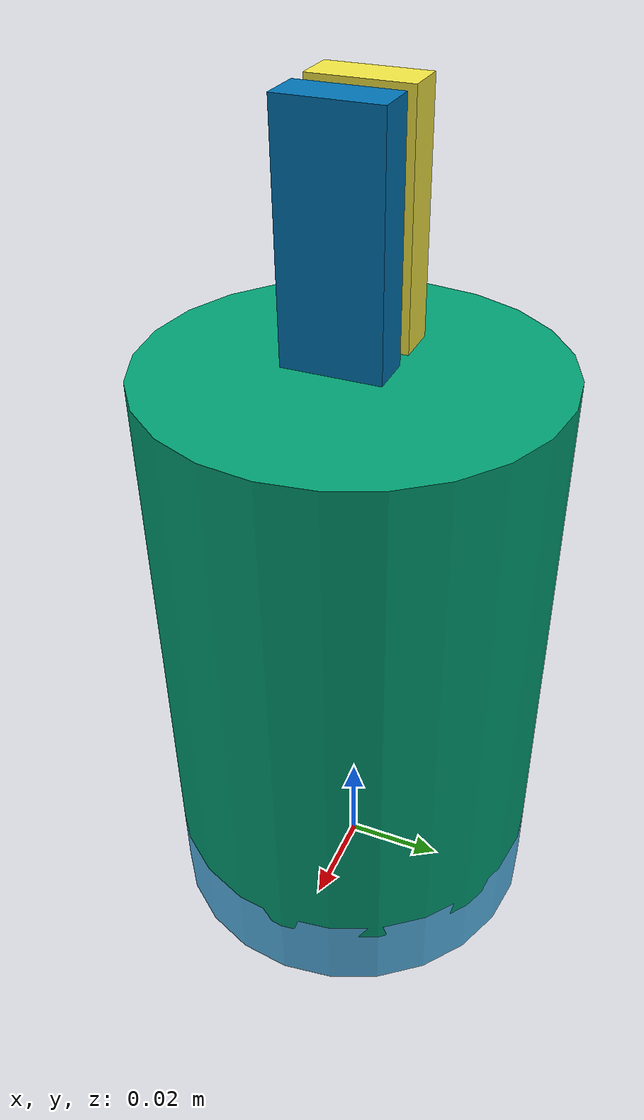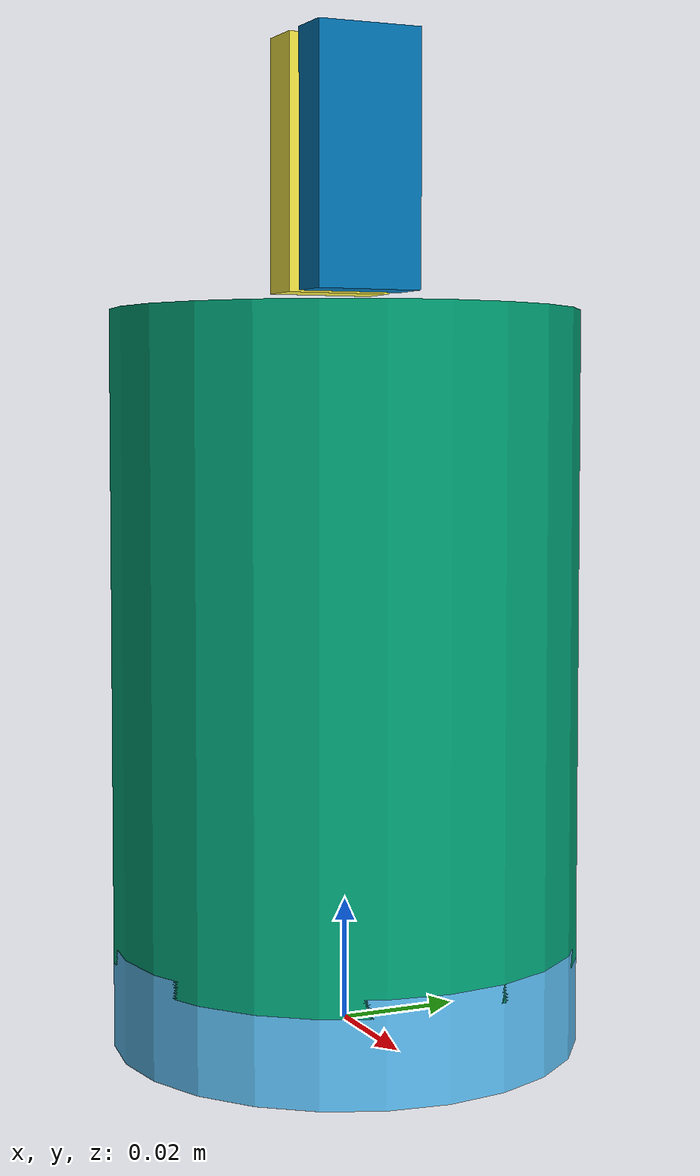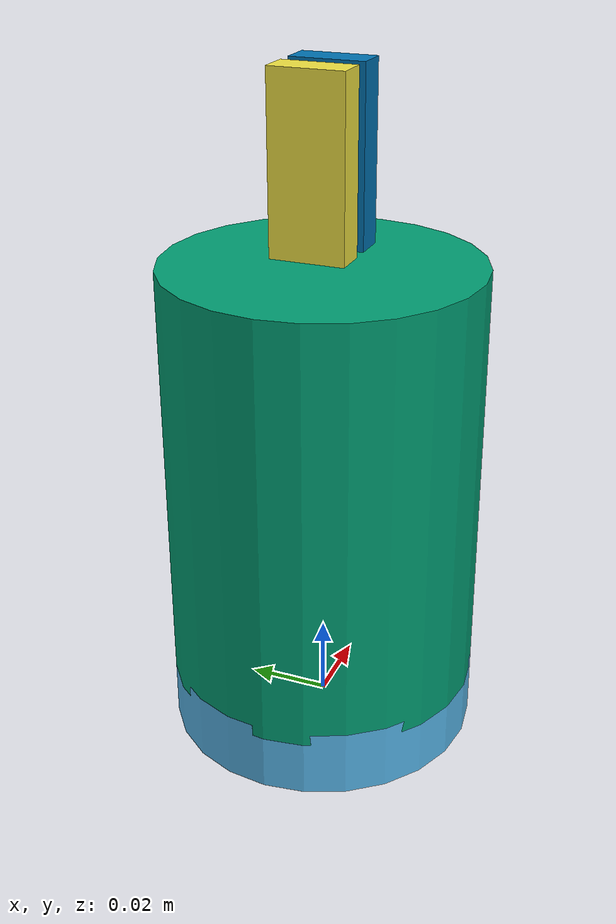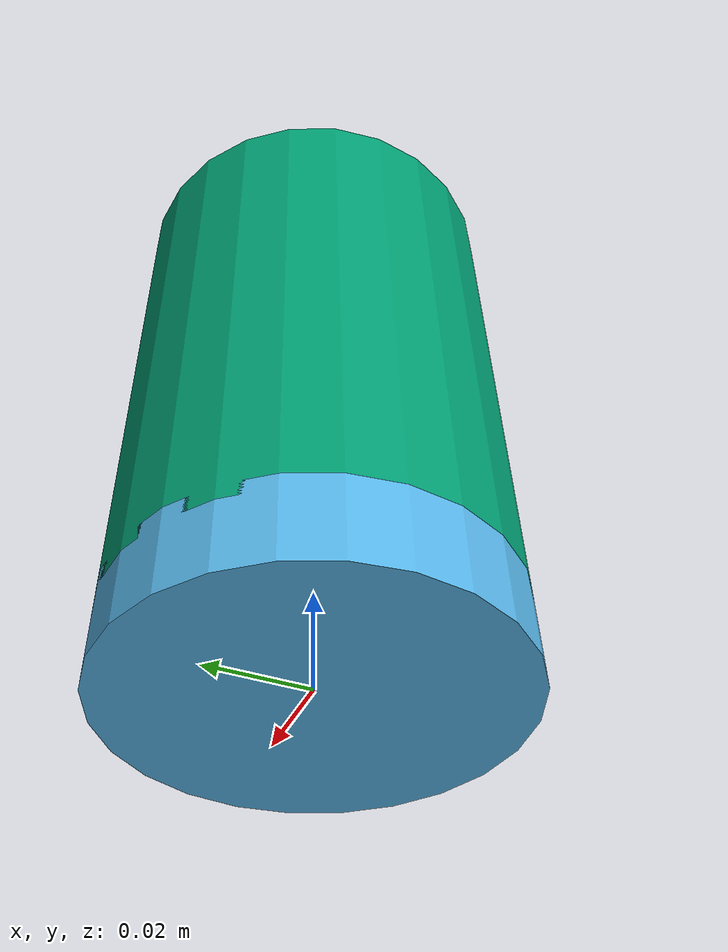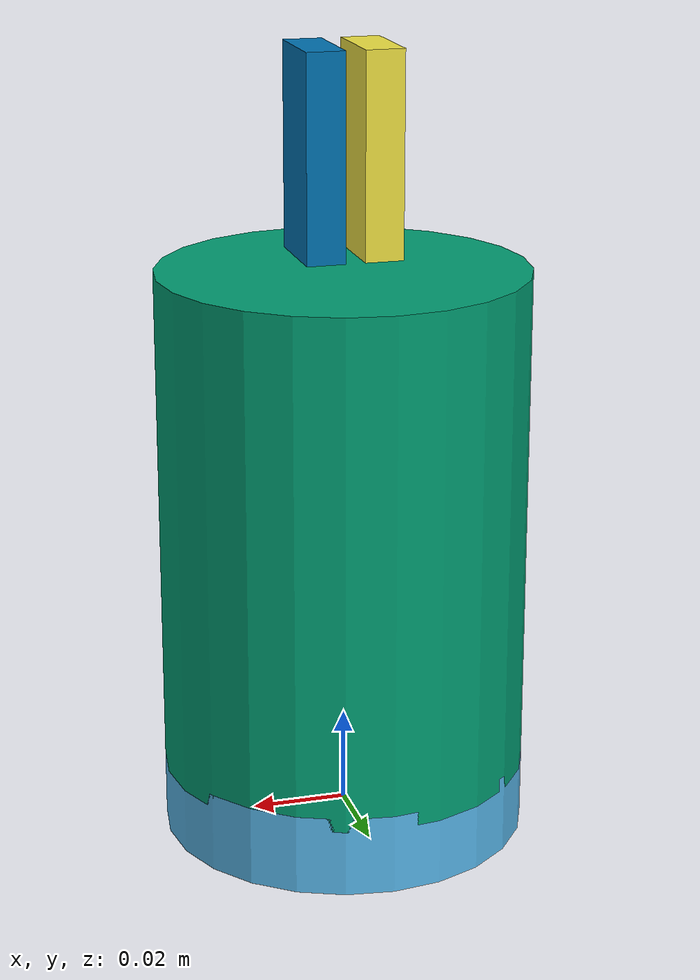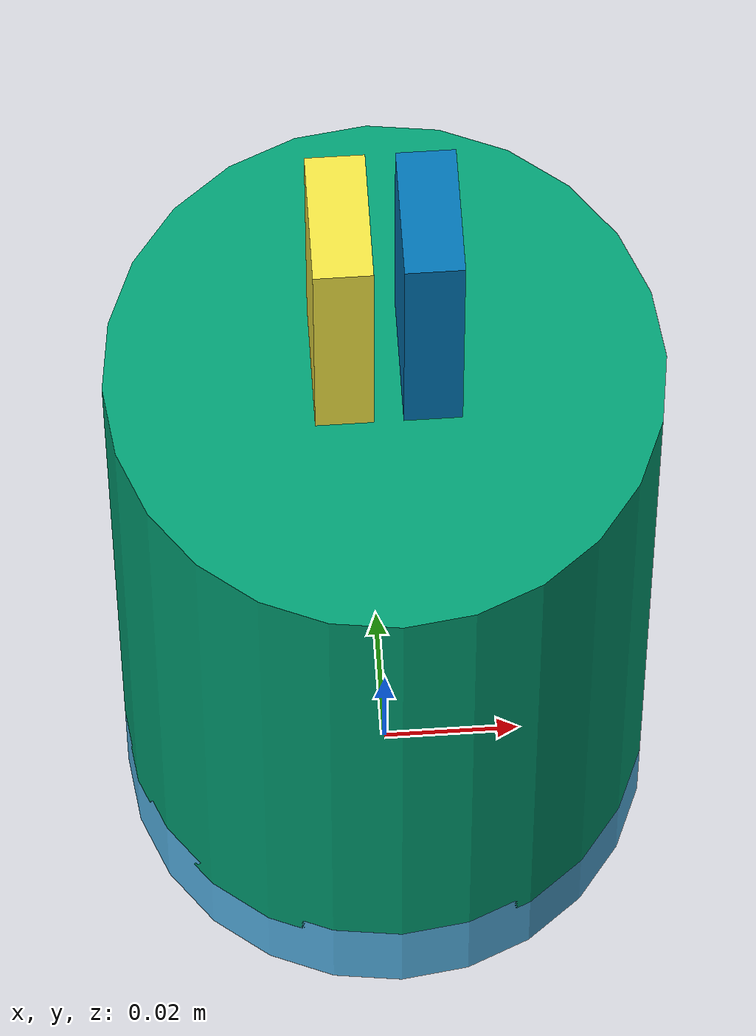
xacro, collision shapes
<?xml version="1.0"?>
<robot xmlns:xacro="http://ros.org/wiki/xacro" name="robotiq_hande_gripper">
  <xacro:arg name="parent" default="tool0"/>
  <xacro:arg name="grip_pos_min" default="0"/>
  <xacro:arg name="grip_pos_max" default="0.025"/>
  <xacro:arg name="tty_port" default="/tmp/ttyUR"/>
  <xacro:arg name="baudrate" default="115200"/>
  <xacro:arg name="parity" default="N"/>
  <xacro:arg name="data_bits" default="8"/>
  <xacro:arg name="stop_bit" default="1"/>
  <xacro:arg name="slave_id" default="9"/>
  <xacro:arg name="frequency_hz" default="10"/>

  <xacro:arg name="create_socat_tty" default="false"/>
  <xacro:arg name="socat_ip_address" default="127.0.0.1"/>
  <xacro:arg name="socat_port" default="54321"/>

  <xacro:arg name="use_fake_hardware" default="true"/>

  <xacro:include filename="$(find robotiq_hande_description)/urdf/robotiq_hande_gripper.xacro"/>

  <link name="$(arg parent)"/>
  <xacro:robotiq_hande_gripper
    name="robotiq_hande_gripper"
    prefix=""
    parent="$(arg parent)"
    grip_pos_min="$(arg grip_pos_min)"
    grip_pos_max="$(arg grip_pos_max)"
    tty_port="$(arg tty_port)"
    baudrate="$(arg baudrate)"
    parity="$(arg parity)"
    data_bits="$(arg data_bits)"
    stop_bit="$(arg stop_bit)"
    slave_id="$(arg slave_id)"
    frequency_hz="$(arg frequency_hz)"
    create_socat_tty="$(arg create_socat_tty)"
    socat_ip_address="$(arg socat_ip_address)"
    socat_port="$(arg socat_port)"
    use_fake_hardware="$(arg use_fake_hardware)"
  />
</robot>

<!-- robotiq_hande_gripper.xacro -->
<robot xmlns:xacro="http://ros.org/wiki/xacro">
  <!--
    Original URDF file by Cristian C Beltran-Hernandez
  -->

  <xacro:include filename="$(find robotiq_hande_description)/urdf/robotiq_hande_gripper.ros2_control.xacro"/>
  <xacro:include filename="$(find robotiq_hande_description)/urdf/cylinder_inertial.xacro"/>

  <xacro:macro
    name="robotiq_hande_gripper"
    params="name
            prefix
            parent
            grip_pos_min
            grip_pos_max
            tty_port
            baudrate
            parity
            data_bits
            stop_bit
            slave_id
            use_fake_hardware
            sim_gazebo:=false
            sim_ignition:=false
            frequency_hz:=10
            create_socat_tty:=false
            socat_ip_address:=127.0.0.1
            socat_port:=54321
            coupler_mass:=0.119
            generate_ros2_control_tag:=true
            xyz:='0 0 0'
            rpy:='0 0 0'"
  >
    <!-- ros2_control parameters  -->
    <xacro:if value="${generate_ros2_control_tag}">
      <xacro:robotiq_hande_ros2_control
        name="${name}"
        prefix="${prefix}"
        grip_pos_min="${grip_pos_min}"
        grip_pos_max="${grip_pos_max}"
        tty_port="${tty_port}"
        baudrate="${baudrate}"
        parity="${parity}"
        data_bits="${data_bits}"
        stop_bit="${stop_bit}"
        slave_id="${slave_id}"
        frequency_hz="${frequency_hz}"
        create_socat_tty="${create_socat_tty}"
        socat_ip_address="${socat_ip_address}"
        socat_port="${socat_port}"
        use_fake_hardware="${use_fake_hardware}"
        sim_gazebo="${sim_gazebo}"
        sim_ignition="${sim_ignition}"
      />
    </xacro:if>

    <!-- Robotiq Hand-E specs -->
    <!--  + Height added by the IO coupler: 11.0mm -->
    <!--  + Height added by the Hand-E: 99.0mm -->
    <!--  + Coupler mass includes the bolts -->
    <xacro:property name="finger_origin_shift" value="${0.025 if (sim_gazebo or sim_ignition) else 0.0}"/>

    <xacro:arg name="coupler_height" default="0.011"/>
    <xacro:arg name="coupler_shell_height" default="0.0169"/>
    <xacro:arg name="coupler_parent_cutoff" default="0.003"/>
    <xacro:arg name="coupler_hande_cutoff" default="0.0029"/>
    <xacro:arg name="hande_height" default="0.099"/>
    <xacro:arg name="hande_radius" default="0.0375"/>

    <joint name="${prefix}robotiq_hande_coupler_joint" type="fixed">
      <origin xyz="${xyz}" rpy="${rpy}"/>
      <parent link="${parent}"/>
      <child link="${prefix}robotiq_hande_coupler"/>
    </joint>

    <link name="${prefix}robotiq_hande_coupler">
      <visual>
        <geometry>
          <mesh filename="package://robotiq_hande_description/meshes/io_coupler.dae"/>
        </geometry>
      </visual>

      <collision>
        <origin xyz="0 0 ${$(arg coupler_shell_height)/2 - $(arg coupler_parent_cutoff)}" rpy="0 0 0"/>
        <geometry>
          <cylinder length="$(arg coupler_shell_height)" radius="${$(arg hande_radius) + 0.001}"/>
        </geometry>
      </collision>

      <xacro:__robotiq_hande_cylinder_inertial radius="$(arg hande_radius)" height="$(arg coupler_shell_height)" mass="${coupler_mass}">
        <origin xyz="0 0 ${$(arg coupler_shell_height) / 2 - $(arg coupler_parent_cutoff)}" rpy="0 0 0"/>
      </xacro:__robotiq_hande_cylinder_inertial>
    </link>

    <joint name="${prefix}robotiq_hande_base_joint" type="fixed">
      <origin xyz="0 0 $(arg coupler_height)" rpy="0 0 0"/>
      <parent link="${prefix}robotiq_hande_coupler"/>
      <child link="${prefix}robotiq_hande_link"/>
    </joint>

    <link name="${prefix}robotiq_hande_link">
      <visual>
        <origin xyz="0 0 0" rpy="0 0 0"/>
        <geometry>
          <mesh filename="package://robotiq_hande_description/meshes/hande.dae" scale="1.0 1.0 1.0"/>
        </geometry>
      </visual>

      <collision>
        <origin xyz="0 0 ${($(arg hande_height) + $(arg coupler_hande_cutoff) + 0.005) / 2}" rpy="0 0 0"/>
        <geometry>
          <cylinder length="${$(arg hande_height) + $(arg coupler_hande_cutoff) + 0.005}" radius="${$(arg hande_radius) + 0.001}"/>
        </geometry>
      </collision>

      <xacro:__robotiq_hande_cylinder_inertial radius="$(arg hande_radius)" height="$(arg hande_height)" mass="0.86387">
        <origin xyz="0 0 ${$(arg hande_height) / 2}" rpy="0 0 0"/>
      </xacro:__robotiq_hande_cylinder_inertial>
    </link>

    <joint name="${prefix}robotiq_hande_left_finger_joint" type="prismatic">
      <origin xyz="${-finger_origin_shift} 0 $(arg hande_height)" rpy="0 0 0"/>
      <parent link="${prefix}robotiq_hande_link"/>
      <child link="${prefix}robotiq_hande_left_finger"/>
      <axis xyz="-1 0 0"/>
      <limit effort="500" lower="${grip_pos_min}" upper="${grip_pos_max}" velocity="0.15"/>
      <dynamics damping="0.02" friction="0.0"/>
    </joint>

    <link name="${prefix}robotiq_hande_left_finger">
      <visual>
        <origin xyz="0 0 0" rpy="0 0 ${pi}"/>
        <geometry>
          <mesh filename="package://robotiq_hande_description/meshes/finger.dae" scale="1.0 1.0 1.0"/>
        </geometry>
      </visual>

      <collision>
        <!-- Use a small fingertip box. Offset it outward so the two fingers do not overlap and jam at q=0. -->
        <origin xyz="-0.006 0 0.032" rpy="0 0 0"/>
        <geometry>
          <box size="0.008 0.018 0.042"/>
        </geometry>
      </collision>

      <inertial>
        <!-- Uniform-box estimate matching the collision proxy; avoids the
             nearly singular placeholder inertia during contact. -->
        <origin xyz="-0.006 0 0.032" rpy="0 0 0"/>
        <mass value="0.03804"/>
        <inertia ixx="${0.03804 * (0.018**2 + 0.042**2) / 12}" ixy="0.0" ixz="0.0" iyy="${0.03804 * (0.008**2 + 0.042**2) / 12}" iyz="0.0" izz="${0.03804 * (0.008**2 + 0.018**2) / 12}"/>
      </inertial>
    </link>

    <joint name="${prefix}robotiq_hande_right_finger_joint" type="prismatic">
      <origin xyz="${finger_origin_shift} 0 $(arg hande_height)" rpy="0 0 0"/>
      <parent link="${prefix}robotiq_hande_link"/>
      <child link="${prefix}robotiq_hande_right_finger"/>
      <axis xyz="1 0 0"/>
      <limit effort="500" lower="${grip_pos_min}" upper="${grip_pos_max}" velocity="0.15"/>
      <dynamics damping="0.02" friction="0.0"/>
      <xacro:unless value="${sim_gazebo or sim_ignition}">
        <mimic joint="${prefix}robotiq_hande_left_finger_joint" multiplier="1" offset="0"/>
      </xacro:unless>
    </joint>

    <link name="${prefix}robotiq_hande_right_finger">
      <visual>
        <origin xyz="0 0 0" rpy="0 0 0"/>
        <geometry>
          <mesh filename="package://robotiq_hande_description/meshes/finger.dae" scale="1.0 1.0 1.0"/>
        </geometry>
      </visual>

      <collision>
        <!-- Use a small fingertip box. Offset it outward so the two fingers do not overlap and jam at q=0. -->
        <origin xyz="0.006 0 0.032" rpy="0 0 0"/>
        <geometry>
          <box size="0.008 0.018 0.042"/>
        </geometry>
      </collision>

      <inertial>
        <origin xyz="0.006 0 0.032" rpy="0 0 0"/>
        <mass value="0.03804"/>
        <inertia ixx="${0.03804 * (0.018**2 + 0.042**2) / 12}" ixy="0.0" ixz="0.0" iyy="${0.03804 * (0.008**2 + 0.042**2) / 12}" iyz="0.0" izz="${0.03804 * (0.008**2 + 0.018**2) / 12}"/>
      </inertial>
    </link>

    <joint name="${prefix}robotiq_hande_end_joint" type="fixed">
      <origin xyz="0 0 ${$(arg hande_height) + 0.0465}" rpy="0 0 0"/>
      <parent link="${prefix}robotiq_hande_link"/>
      <child link="${prefix}robotiq_hande_end"/>
    </joint>

    <link name="${prefix}robotiq_hande_end"/>
  </xacro:macro>
</robot>
